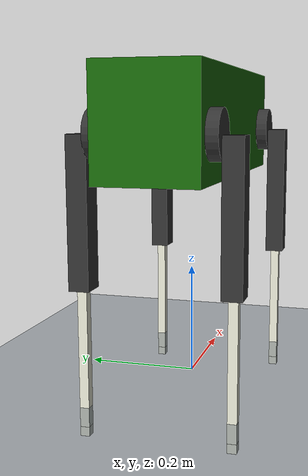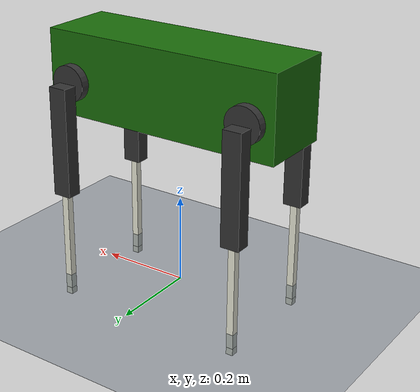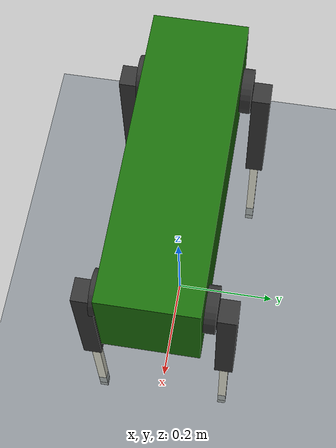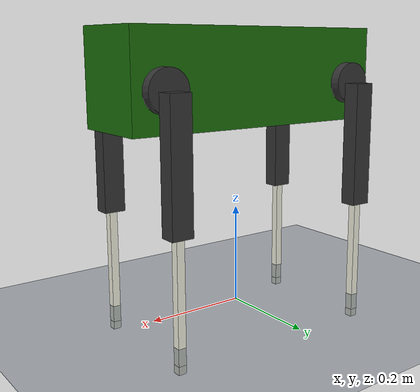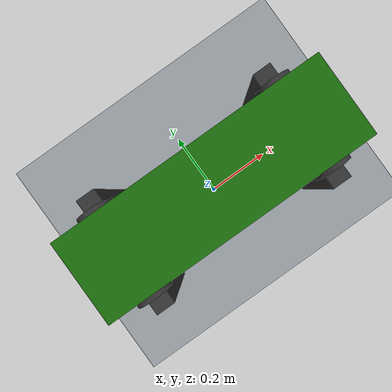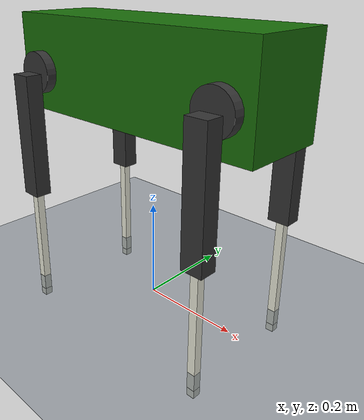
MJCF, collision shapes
<mujoco model="laikago_description">
    <compiler angle="radian" meshdir="./" />
    <size njmax="500" nconmax="100" />
    <asset>
        <mesh name="trunk" file="trunk.stl" />
        <mesh name="hip" file="hip.stl" />
        <mesh name="thigh_mirror" file="thigh_mirror.stl" />
        <mesh name="calf" file="calf.stl" />
        <mesh name="thigh" file="thigh.stl" />
 	<texture type="skybox" builtin="gradient" rgb1="0.3 0.5 0.7" rgb2="0 0 0" width="512" height="512"/>
        <texture name="texplane" type="2d" builtin="checker" rgb1=".2 .3 .4" rgb2=".1 0.15 0.2" width="512" height="512" mark="cross" markrgb=".8 .8 .8"/>
        <texture name="texgeom" type="cube" builtin="flat" mark="cross" width="127" height="1278"
            rgb1="0.8 0.6 0.4" rgb2="0.8 0.6 0.4" markrgb="1 1 1" random="0.01"/>
        <material name="matplane" reflectance="0.3" texture="texplane" texrepeat="1 1" texuniform="true"/>
        <material name="matgeom" texture="texgeom" texuniform="true" rgba="0.8 0.6 .4 1"/>
    </asset>
    <worldbody>
	<geom name="floor" pos="0 0 0" size="0 0 .25" type="plane" material="matplane" condim="3"/>
	<light directional="false" diffuse=".2 .2 .2" specular="0 0 0" pos="0 0 5" dir="0 0 -1" castshadow="false"/>
        <light mode="targetbodycom" target="trunk" directional="false" diffuse=".8 .8 .8" specular="0.3 0.3 0.3" pos="0 0 4.0" dir="0 0 -1"/>
        <body name="trunk" pos="0 0 0.45">
        <freejoint name="root"/>
            <inertial pos="0.002284 -4.1e-05 0.025165" quat="-0.00605949 0.710803 -0.00734309 0.703327" mass="13.733" diaginertia="0.254491 0.250684 0.0733281" />
            <geom type="mesh" contype="0" conaffinity="0" group="1" rgba="1 0.423529 0.0392157 1" mesh="trunk" />
            <geom name="trunk_skeleton" size="0.2808 0.086 0.09375" pos="0 0 0.01675" type="box" rgba="0.1 0.423529 0.0392157 0" />
            <body name="FR_hip" pos="0.21935 -0.0875 0">
                <inertial pos="-0.001568 0.008134 0.000864" quat="0.629953 0.350191 0.35823 0.593462" mass="1.096" diaginertia="0.000983491 0.000885646 0.000800926" />
                <joint name="FR_hip_joint" pos="0 0 0" axis="1 0 0" limited="true" range="-1.0472 0.872665" />
                <geom quat="0 1 0 0" type="mesh" contype="0" conaffinity="0" group="1" rgba="0.2 0.2 0.2 1" mesh="hip" />
                <geom size="0.041 0.04" pos="0 0.021 0" quat="0.707107 0.707107 0 0" type="cylinder" rgba="0.2 0.2 0.2 1" />
                <body name="FR_thigh" pos="0 -0.037 0">
                    <inertial pos="-0.000482 -0.02001 -0.031996" quat="0.999848 0.00577968 -0.0153453 -0.00595156" mass="1.528" diaginertia="0.00992391 0.00928096 0.00177389" />
                    <joint name="FR_thigh_joint" pos="0 0 0" axis="0 1 0" limited="true" range="-0.523599 3.92699" />
                    <geom type="mesh" contype="0" conaffinity="0" group="1" rgba="0.2 0.2 0.2 1" mesh="thigh_mirror" />
                    <geom size="0.125 0.017 0.0215" pos="0 0 -0.125" quat="0.707107 0 0.707107 0" type="box" rgba="0.2 0.2 0.2 1" />
                    <body name="FR_calf" pos="0 0 -0.25">
                        <inertial pos="-0.002196 -0.000381 -0.12338" quat="0.712765 0.000467477 -0.000119366 0.701402" mass="0.241" diaginertia="0.00619655 0.00618196 3.47683e-05" />
                        <joint name="FR_calf_joint" pos="0 0 0" axis="0 1 0" limited="true" range="-2.77507 -0.610865" />
                        <geom type="mesh" contype="0" conaffinity="0" group="1" rgba="0.913725 0.913725 0.847059 1" mesh="calf" />
                        <geom name="FR_calf_skeleton" size="0.117 0.008 0.008" pos="0 0 -0.117" quat="0.707107 0 0.707107 0" type="box" rgba="0.913725 0.913725 0.847059 1" />
                        <geom name="FR_toe" size="0.008 0.008 0.008" pos="0 0 -0.242" quat="0.707107 0 0.707107 0" type="box" rgba="0.913725 0.913725 0.847059 1" />
                    </body>
                </body>
            </body>
            <body name="FL_hip" pos="0.21935 0.0875 0">
                <inertial pos="-0.001568 -0.008134 0.000864" quat="0.593462 0.35823 0.350191 0.629953" mass="1.096" diaginertia="0.000983491 0.000885646 0.000800926" />
                <joint name="FL_hip_joint" pos="0 0 0" axis="1 0 0" limited="true" range="-0.872665 1.0472" />
                <geom type="mesh" contype="0" conaffinity="0" group="1" rgba="0.2 0.2 0.2 1" mesh="hip" />
                <geom size="0.041 0.04" pos="0 -0.021 0" quat="0.707107 0.707107 0 0" type="cylinder" rgba="0.2 0.2 0.2 1" />
                <body name="FL_thigh" pos="0 0.037 0">
                    <inertial pos="-0.000482 0.02001 -0.031996" quat="0.999848 -0.00577968 -0.0153453 0.00595156" mass="1.528" diaginertia="0.00992391 0.00928096 0.00177389" />
                    <joint name="FL_thigh_joint" pos="0 0 0" axis="0 1 0" limited="true" range="-0.523599 3.92699" />
                    <geom type="mesh" contype="0" conaffinity="0" group="1" rgba="0.2 0.2 0.2 1" mesh="thigh" />
                    <geom size="0.125 0.017 0.0215" pos="0 0 -0.125" quat="0.707107 0 0.707107 0" type="box" rgba="0.2 0.2 0.2 1" />
                    <body name="FL_calf" pos="0 0 -0.25">
                        <inertial pos="-0.002196 -0.000381 -0.12338" quat="0.712765 0.000467477 -0.000119366 0.701402" mass="0.241" diaginertia="0.00619655 0.00618196 3.47683e-05" />
                        <joint name="FL_calf_joint" pos="0 0 0" axis="0 1 0" limited="true" range="-2.77507 -0.610865" />
                        <geom type="mesh" contype="0" conaffinity="0" group="1" rgba="0.913725 0.913725 0.847059 1" mesh="calf" />
                        <geom name="FL_calf_skeleton" size="0.117 0.008 0.008" pos="0 0 -0.117" quat="0.707107 0 0.707107 0" type="box" rgba="0.913725 0.913725 0.847059 1" />
                        <geom name="FL_toe" size="0.008 0.008 0.008" pos="0 0 -0.242" quat="0.707107 0 0.707107 0" type="box" rgba="0.913725 0.913725 0.847059 1" />
                    </body>
                </body>
            </body>
            <body name="RR_hip" pos="-0.21935 -0.0875 0">
                <inertial pos="0.001568 0.008134 0.000864" quat="0.35823 0.593462 0.629953 0.350191" mass="1.096" diaginertia="0.000983491 0.000885646 0.000800926" />
                <joint name="RR_hip_joint" pos="0 0 0" axis="1 0 0" limited="true" range="-1.0472 0.872665" />
                <geom quat="0 0 0 -1" type="mesh" contype="0" conaffinity="0" group="1" rgba="0.2 0.2 0.2 1" mesh="hip" />
                <geom size="0.041 0.04" pos="0 0.021 0" quat="0.707107 0.707107 0 0" type="cylinder" rgba="0.2 0.2 0.2 1" />
                <body name="RR_thigh" pos="0 -0.037 0">
                    <inertial pos="-0.000482 -0.02001 -0.031996" quat="0.999848 0.00577968 -0.0153453 -0.00595156" mass="1.528" diaginertia="0.00992391 0.00928096 0.00177389" />
                    <joint name="RR_thigh_joint" pos="0 0 0" axis="0 1 0" limited="true" range="-0.523599 3.92699" />
                    <geom type="mesh" contype="0" conaffinity="0" group="1" rgba="0.2 0.2 0.2 1" mesh="thigh_mirror" />
                    <geom size="0.125 0.017 0.0215" pos="0 0 -0.125" quat="0.707107 0 0.707107 0" type="box" rgba="0.2 0.2 0.2 1" />
                    <body name="RR_calf" pos="0 0 -0.25">
                        <inertial pos="-0.002196 -0.000381 -0.12338" quat="0.712765 0.000467477 -0.000119366 0.701402" mass="0.241" diaginertia="0.00619655 0.00618196 3.47683e-05" />
                        <joint name="RR_calf_joint" pos="0 0 0" axis="0 1 0" limited="true" range="-2.77507 -0.610865" />
                        <geom type="mesh" contype="0" conaffinity="0" group="1" rgba="0.913725 0.913725 0.847059 1" mesh="calf" />
                        <geom name="RR_calf_skeleton" size="0.117 0.008 0.008" pos="0 0 -0.117" quat="0.707107 0 0.707107 0" type="box" rgba="0.913725 0.913725 0.847059 1" />
                        <geom name="RR_toe" size="0.008 0.008 0.008" pos="0 0 -0.242" quat="0.707107 0 0.707107 0" type="box" rgba="0.913725 0.913725 0.847059 1" />
                    </body>
                </body>
            </body>
            <body name="RL_hip" pos="-0.21935 0.0875 0">
                <inertial pos="0.001568 -0.008134 0.000864" quat="0.350191 0.629953 0.593462 0.35823" mass="1.096" diaginertia="0.000983491 0.000885646 0.000800926" />
                <joint name="RL_hip_joint" pos="0 0 0" axis="1 0 0" limited="true" range="-0.872665 1.0472" />
                <geom quat="0 0 1 0" type="mesh" contype="0" conaffinity="0" group="1" rgba="0.2 0.2 0.2 1" mesh="hip" />
                <geom size="0.041 0.04" pos="0 -0.021 0" quat="0.707107 0.707107 0 0" type="cylinder" rgba="0.2 0.2 0.2 1" />
                <body name="RL_thigh" pos="0 0.037 0">
                    <inertial pos="-0.000482 0.02001 -0.031996" quat="0.999848 -0.00577968 -0.0153453 0.00595156" mass="1.528" diaginertia="0.00992391 0.00928096 0.00177389" />
                    <joint name="RL_thigh_joint" pos="0 0 0" axis="0 1 0" limited="true" range="-0.523599 3.92699" />
                    <geom type="mesh" contype="0" conaffinity="0" group="1" rgba="0.2 0.2 0.2 1" mesh="thigh" />
                    <geom size="0.125 0.017 0.0215" pos="0 0 -0.125" quat="0.707107 0 0.707107 0" type="box" rgba="0.2 0.2 0.2 1" />
                    <body name="RL_calf" pos="0 0 -0.25">
                        <inertial pos="-0.002196 -0.000381 -0.12338" quat="0.712765 0.000467477 -0.000119366 0.701402" mass="0.241" diaginertia="0.00619655 0.00618196 3.47683e-05" />
                        <joint name="RL_calf_joint" pos="0 0 0" axis="0 1 0" limited="true" range="-2.77507 -0.610865" />
                        <geom type="mesh" contype="0" conaffinity="0" group="1" rgba="0.913725 0.913725 0.847059 1" mesh="calf" />
                        <geom name="RL_calf_skeleton" size="0.117 0.008 0.008" pos="0 0 -0.117" quat="0.707107 0 0.707107 0" type="box" rgba="0.913725 0.913725 0.847059 1" />
                        <geom name="RL_toe" size="0.008 0.008 0.008" pos="0 0 -0.242" quat="0.707107 0 0.707107 0" type="box" rgba="0.913725 0.913725 0.847059 1" />
                    </body>
                </body>
            </body>
        </body>
    </worldbody>
   <actuator>
    <motor name="FR_hip_joint"       gear="1" joint="FR_hip_joint" ctrlrange="-40 40" ctrllimited="true"/>
    <motor name="FR_thigh_joint"       gear="1" joint="FR_thigh_joint" ctrlrange="-40 40" ctrllimited="true"/>
    <motor name="FR_calf_joint"       gear="1" joint="FR_calf_joint" ctrlrange="-40 40" ctrllimited="true"/>
    <motor name="FL_hip_joint"       gear="1" joint="FL_hip_joint" ctrlrange="-40 40" ctrllimited="true"/>
    <motor name="FL_thigh_joint"       gear="1" joint="FL_thigh_joint" ctrlrange="-40 40" ctrllimited="true"/>
    <motor name="FL_calf_joint"       gear="1" joint="FL_calf_joint" ctrlrange="-40 40" ctrllimited="true"/>
    <motor name="RR_hip_joint"       gear="1" joint="RR_hip_joint" ctrlrange="-40 40" ctrllimited="true"/>
    <motor name="RR_thigh_joint"       gear="1" joint="RR_thigh_joint" ctrlrange="-40 40" ctrllimited="true"/>
    <motor name="RR_calf_joint"       gear="1" joint="RR_calf_joint" ctrlrange="-40 40" ctrllimited="true"/>
    <motor name="RL_hip_joint"       gear="1" joint="RL_hip_joint" ctrlrange="-40 40" ctrllimited="true"/>
    <motor name="RL_thigh_joint"       gear="1" joint="RL_thigh_joint" ctrlrange="-40 40" ctrllimited="true"/>
    <motor name="RL_calf_joint"       gear="1" joint="RL_calf_joint" ctrlrange="-40 40" ctrllimited="true"/>

    </actuator>
</mujoco>
